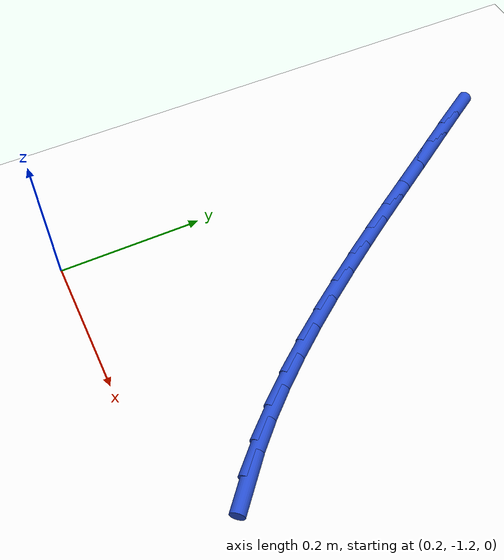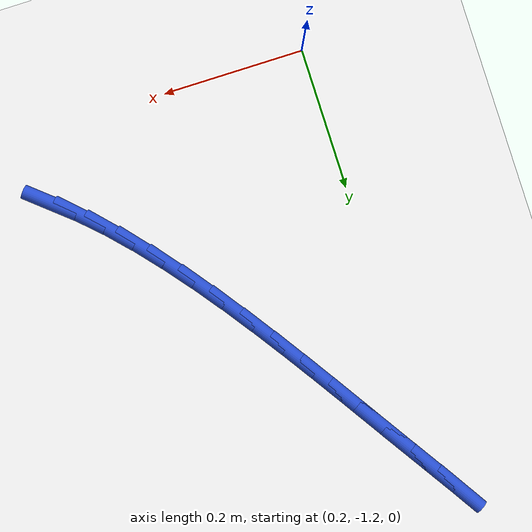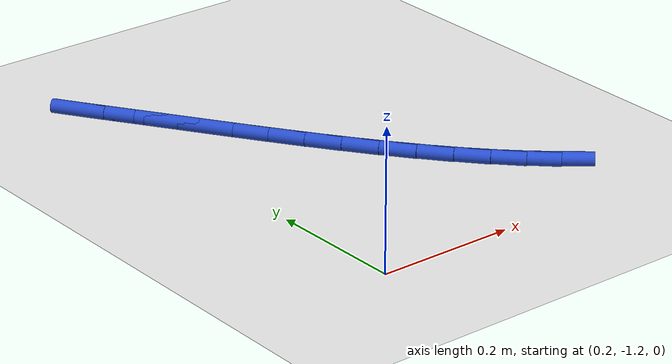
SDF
<sdf version="1.6">
 <world name="default">
  <model name="ground_plane">
   <static>1</static>
   <link name="link">
    <collision name="collision">
     <geometry><plane><normal>0 0 1</normal><size>100 100</size></plane></geometry>
     <surface><friction><ode><mu>100</mu><mu2>50</mu2></ode></friction></surface>
    </collision>
    <visual name="visual">
     <cast_shadows>0</cast_shadows>
     <geometry><plane><normal>0 0 1</normal><size>100 100</size></plane></geometry>
     <material>
      <script><uri>file://media/materials/scripts/gazebo.material</uri><name>Gazebo/WhiteGlow</name></script>
     </material>
    </visual>
   </link>
  </model>
  <model name="line">
   <link name="link_152">
    <pose>0.5945783664714703 -1.1029950855491397 0.01 0 1.57 -0.7036167477557552</pose>
    <collision name="collision">
     <geometry><cylinder><radius>0.01</radius><length>0.08</length></cylinder></geometry>
    </collision>
    <visual name="visual">
     <material>
      <script><name>Gazebo/Blue</name><uri>file://media/materials/scripts/gazebo.material</uri></script>
     </material>
     <geometry><cylinder><radius>0.01</radius><length>0.08</length></cylinder></geometry>
    </visual>
   </link>
   <link name="link_153">
    <pose>0.5607865943141578 -1.0743231065472323 0.01 0 1.57 -0.7677932075517874</pose>
    <collision name="collision">
     <geometry><cylinder><radius>0.01</radius><length>0.08</length></cylinder></geometry>
    </collision>
    <visual name="visual">
     <material>
      <script><name>Gazebo/Blue</name><uri>file://media/materials/scripts/gazebo.material</uri></script>
     </material>
     <geometry><cylinder><radius>0.01</radius><length>0.08</length></cylinder></geometry>
    </visual>
   </link>
   <link name="link_154">
    <pose>0.5274999258753702 -1.042188299302172 0.01 0 1.57 -0.8202804201461357</pose>
    <collision name="collision">
     <geometry><cylinder><radius>0.01</radius><length>0.08</length></cylinder></geometry>
    </collision>
    <visual name="visual">
     <material>
      <script><name>Gazebo/Blue</name><uri>file://media/materials/scripts/gazebo.material</uri></script>
     </material>
     <geometry><cylinder><radius>0.01</radius><length>0.08</length></cylinder></geometry>
    </visual>
   </link>
   <link name="link_155">
    <pose>0.494750159311716 -1.007070187317405 0.01 0 1.57 -0.8631863849559881</pose>
    <collision name="collision">
     <geometry><cylinder><radius>0.01</radius><length>0.08</length></cylinder></geometry>
    </collision>
    <visual name="visual">
     <material>
      <script><name>Gazebo/Blue</name><uri>file://media/materials/scripts/gazebo.material</uri></script>
     </material>
     <geometry><cylinder><radius>0.01</radius><length>0.08</length></cylinder></geometry>
    </visual>
   </link>
   <link name="link_156">
    <pose>0.46256909277980074 -0.9694482940963745 0.01 0 1.57 -0.8981559999890301</pose>
    <collision name="collision">
     <geometry><cylinder><radius>0.01</radius><length>0.08</length></cylinder></geometry>
    </collision>
    <visual name="visual">
     <material>
      <script><name>Gazebo/Blue</name><uri>file://media/materials/scripts/gazebo.material</uri></script>
     </material>
     <geometry><cylinder><radius>0.01</radius><length>0.08</length></cylinder></geometry>
    </visual>
   </link>
   <link name="link_157">
    <pose>0.4309885244362307 -0.9298021431425236 0.01 0 1.57 -0.9264395299572047</pose>
    <collision name="collision">
     <geometry><cylinder><radius>0.01</radius><length>0.08</length></cylinder></geometry>
    </collision>
    <visual name="visual">
     <material>
      <script><name>Gazebo/Blue</name><uri>file://media/materials/scripts/gazebo.material</uri></script>
     </material>
     <geometry><cylinder><radius>0.01</radius><length>0.08</length></cylinder></geometry>
    </visual>
   </link>
   <link name="link_158">
    <pose>0.4000402524376127 -0.8886112579592972 0.01 0 1.57 -0.9489619999095658</pose>
    <collision name="collision">
     <geometry><cylinder><radius>0.01</radius><length>0.08</length></cylinder></geometry>
    </collision>
    <visual name="visual">
     <material>
      <script><name>Gazebo/Blue</name><uri>file://media/materials/scripts/gazebo.material</uri></script>
     </material>
     <geometry><cylinder><radius>0.01</radius><length>0.08</length></cylinder></geometry>
    </visual>
   </link>
   <link name="link_159">
    <pose>0.36975607494055235 -0.8463551620501379 0.01 0 1.57 -0.9663793385086836</pose>
    <collision name="collision">
     <geometry><cylinder><radius>0.01</radius><length>0.08</length></cylinder></geometry>
    </collision>
    <visual name="visual">
     <material>
      <script><name>Gazebo/Blue</name><uri>file://media/materials/scripts/gazebo.material</uri></script>
     </material>
     <geometry><cylinder><radius>0.01</radius><length>0.08</length></cylinder></geometry>
    </visual>
   </link>
   <link name="link_160">
    <pose>0.34016779010165754 -0.8035133789184917 0.01 0 1.57 -0.9791173360593438</pose>
    <collision name="collision">
     <geometry><cylinder><radius>0.01</radius><length>0.08</length></cylinder></geometry>
    </collision>
    <visual name="visual">
     <material>
      <script><name>Gazebo/Blue</name><uri>file://media/materials/scripts/gazebo.material</uri></script>
     </material>
     <geometry><cylinder><radius>0.01</radius><length>0.08</length></cylinder></geometry>
    </visual>
   </link>
   <link name="link_161">
    <pose>0.31130719607753393 -0.7605654320678015 0.01 0 1.57 -0.9873926007474553</pose>
    <collision name="collision">
     <geometry><cylinder><radius>0.01</radius><length>0.08</length></cylinder></geometry>
    </collision>
    <visual name="visual">
     <material>
      <script><name>Gazebo/Blue</name><uri>file://media/materials/scripts/gazebo.material</uri></script>
     </material>
     <geometry><cylinder><radius>0.01</radius><length>0.08</length></cylinder></geometry>
    </visual>
   </link>
   <link name="link_162">
    <pose>0.28320609102478833 -0.7179908450015117 0.01 0 1.57 -0.9912144487094228</pose>
    <collision name="collision">
     <geometry><cylinder><radius>0.01</radius><length>0.08</length></cylinder></geometry>
    </collision>
    <visual name="visual">
     <material>
      <script><name>Gazebo/Blue</name><uri>file://media/materials/scripts/gazebo.material</uri></script>
     </material>
     <geometry><cylinder><radius>0.01</radius><length>0.08</length></cylinder></geometry>
    </visual>
   </link>
   <link name="link_163">
    <pose>0.255896273100027 -0.6762691412230657 0.01 0 1.57 -0.9903744623569157</pose>
    <collision name="collision">
     <geometry><cylinder><radius>0.01</radius><length>0.08</length></cylinder></geometry>
    </collision>
    <visual name="visual">
     <material>
      <script><name>Gazebo/Blue</name><uri>file://media/materials/scripts/gazebo.material</uri></script>
     </material>
     <geometry><cylinder><radius>0.01</radius><length>0.08</length></cylinder></geometry>
    </visual>
   </link>
   <link name="link_164">
    <pose>0.2294096176199566 -0.6358790771255957 0.01 0 1.57 -0.9875678802193429</pose>
    <collision name="collision">
     <geometry><cylinder><radius>0.01</radius><length>0.08</length></cylinder></geometry>
    </collision>
    <visual name="visual">
     <material>
      <script><name>Gazebo/Blue</name><uri>file://media/materials/scripts/gazebo.material</uri></script>
     </material>
     <geometry><cylinder><radius>0.01</radius><length>0.08</length></cylinder></geometry>
    </visual>
   </link>
   <link name="link_165">
    <pose>0.20380141969677826 -0.5970665741712209 0.01 0 1.57 -0.9904638166827219</pose>
    <collision name="collision">
     <geometry><cylinder><radius>0.01</radius><length>0.08</length></cylinder></geometry>
    </collision>
    <visual name="visual">
     <material>
      <script><name>Gazebo/Blue</name><uri>file://media/materials/scripts/gazebo.material</uri></script>
     </material>
     <geometry><cylinder><radius>0.01</radius><length>0.08</length></cylinder></geometry>
    </visual>
   </link>
   <link name="link_166">
    <pose>0.17918321386797886 -0.5595184326841597 0.01 0 1.57 -1.0008309568303042</pose>
    <collision name="collision">
     <geometry><cylinder><radius>0.01</radius><length>0.08</length></cylinder></geometry>
    </collision>
    <visual name="visual">
     <material>
      <script><name>Gazebo/Blue</name><uri>file://media/materials/scripts/gazebo.material</uri></script>
     </material>
     <geometry><cylinder><radius>0.01</radius><length>0.08</length></cylinder></geometry>
    </visual>
   </link>
  </model>
 </world>
</sdf>
